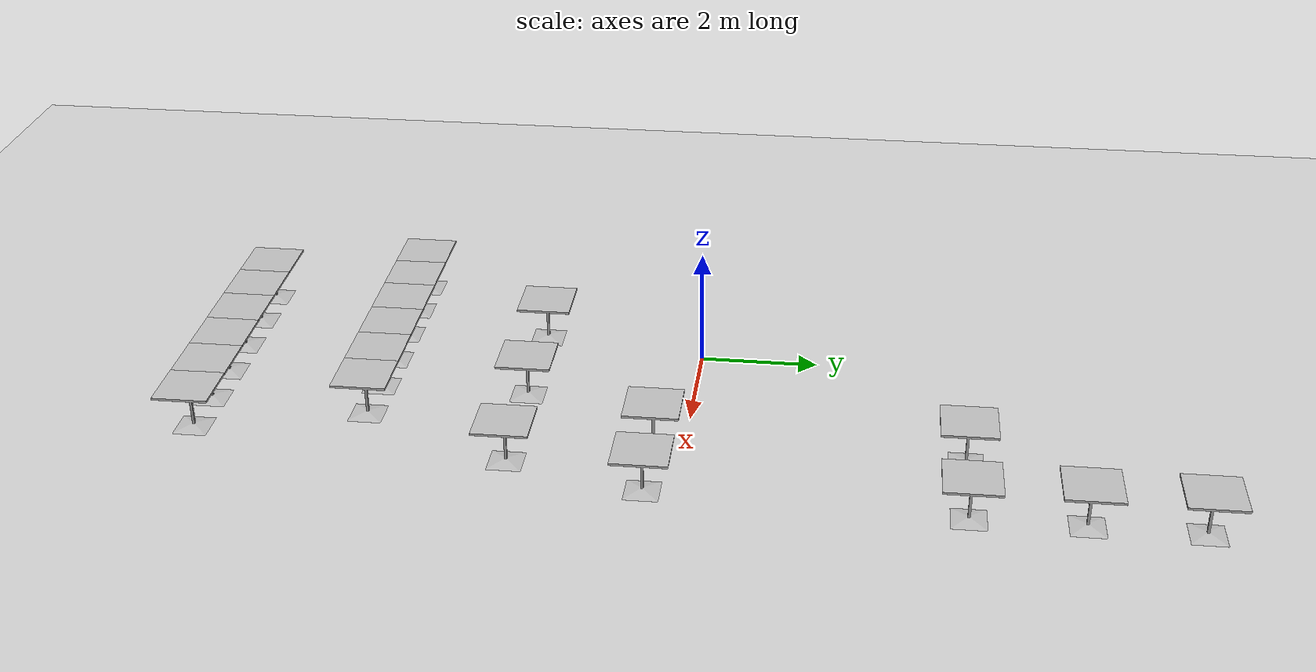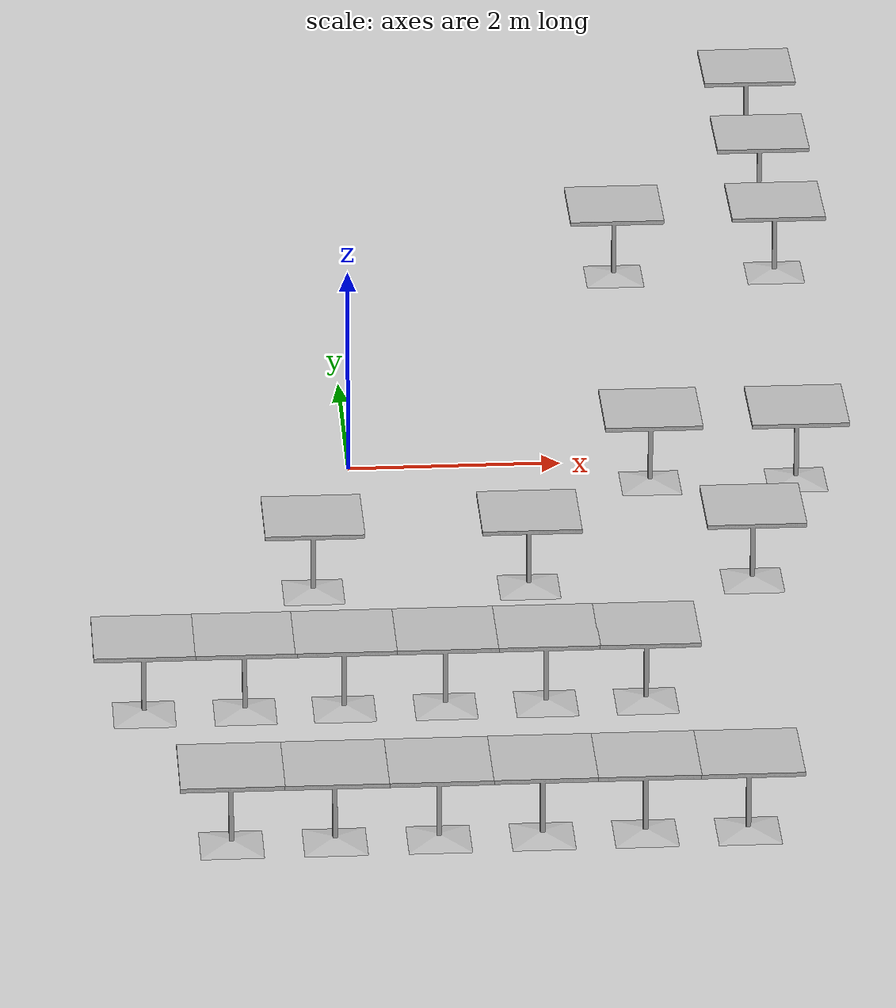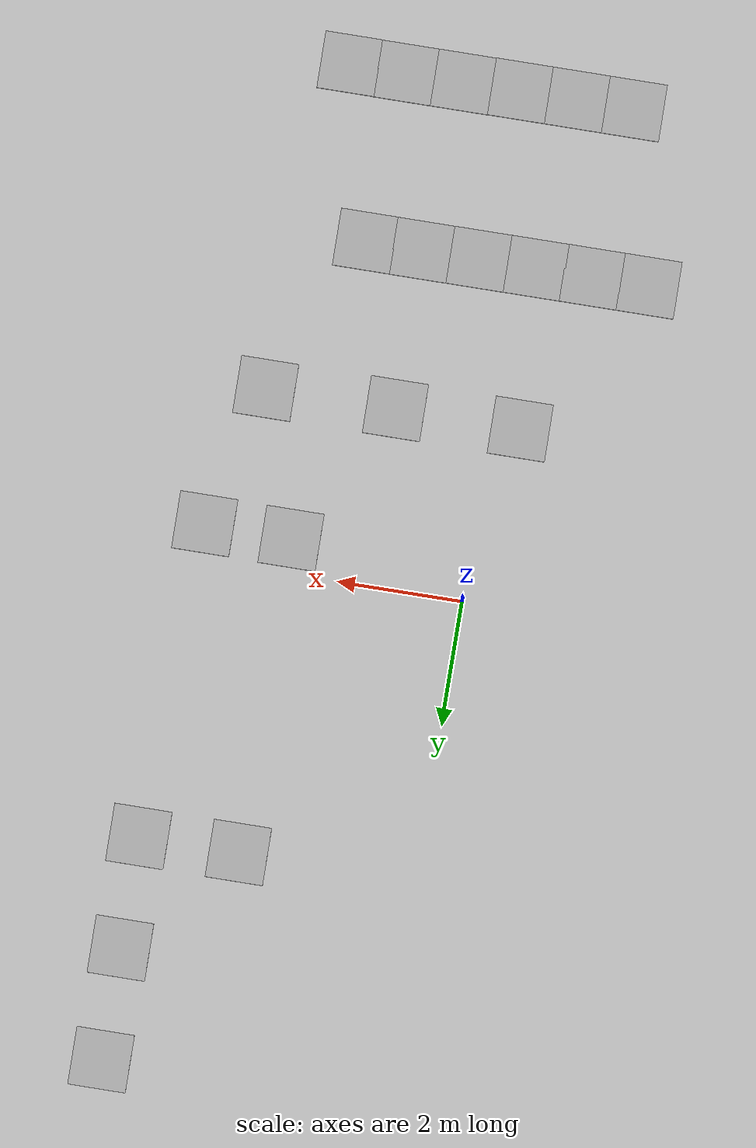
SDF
<sdf version="1.7">
 <world name="default">
  <light name="sun" type="directional">
   <pose>0 0 10 0 -0 0</pose>
   <diffuse>0.8 0.8 0.8 1</diffuse>
   <specular>0.2 0.2 0.2 1</specular>
   <attenuation>
    <range>1000</range>
    <constant>0.9</constant>
    <linear>0.01</linear>
    <quadratic>0.001</quadratic>
   </attenuation>
   <direction>-0.5 0.1 -0.9</direction>
   <spot><inner_angle>0</inner_angle><outer_angle>0</outer_angle><falloff>0</falloff></spot>
  </light>
  <model name="ground_plane">
   <static>1</static>
   <link name="link">
    <collision name="collision">
     <geometry><plane><normal>0 0 1</normal><size>100 100</size></plane></geometry>
     <surface>
      <contact><collide_bitmask>65535</collide_bitmask></contact>
      <friction><ode><mu>100</mu><mu2>50</mu2></ode></friction>
     </surface>
    </collision>
    <visual name="visual">
     <cast_shadows>0</cast_shadows>
     <geometry><plane><normal>0 0 1</normal><size>100 100</size></plane></geometry>
     <material>
      <script><uri>file://media/materials/scripts/gazebo.material</uri><name>Gazebo/Grey</name></script>
     </material>
    </visual>
   </link>
  </model>
  <gravity>0 0 -9.8</gravity>
  <magnetic_field>6e-06 2.3e-05 -4.2e-05</magnetic_field>
  <atmosphere type="adiabatic"/>
  <physics type="ode">
   <max_step_size>0.001</max_step_size>
   <real_time_factor>1</real_time_factor>
   <real_time_update_rate>1000</real_time_update_rate>
  </physics>
  <scene><ambient>0.4 0.4 0.4 1</ambient><background>0.7 0.7 0.7 1</background><shadows>1</shadows></scene>
  <spherical_coordinates>
   <surface_model>EARTH_WGS84</surface_model>
   <latitude_deg>0</latitude_deg>
   <longitude_deg>0</longitude_deg>
   <elevation>0</elevation>
   <heading_deg>0</heading_deg>
  </spherical_coordinates>
  <model name="cafe_table">
   <static>1</static>
   <link name="link">
    <collision name="surface">
     <pose>0 0 0.755 0 -0 0</pose>
     <geometry><box><size>0.913 0.913 0.04</size></box></geometry>
    </collision>
    <collision name="column">
     <pose>0 0 0.37 0 -0 0</pose>
     <geometry><box><size>0.042 0.042 0.74</size></box></geometry>
    </collision>
    <collision name="base">
     <pose>0 0 0.02 0 -0 0</pose>
     <geometry><box><size>0.56 0.56 0.04</size></box></geometry>
    </collision>
    <visual name="visual">
     <geometry><mesh><uri>model://cafe_table/meshes/cafe_table.dae</uri></mesh></geometry>
    </visual>
   </link>
   <pose>-1.45373 -8.08665 0 0 -0 0</pose>
  </model>
  <model name="cafe_table_0">
   <static>1</static>
   <link name="link">
    <collision name="surface">
     <pose>0 0 0.755 0 -0 0</pose>
     <geometry><box><size>0.913 0.913 0.04</size></box></geometry>
    </collision>
    <collision name="column">
     <pose>0 0 0.37 0 -0 0</pose>
     <geometry><box><size>0.042 0.042 0.74</size></box></geometry>
    </collision>
    <collision name="base">
     <pose>0 0 0.02 0 -0 0</pose>
     <geometry><box><size>0.56 0.56 0.04</size></box></geometry>
    </collision>
    <visual name="visual">
     <geometry><mesh><uri>model://cafe_table/meshes/cafe_table.dae</uri></mesh></geometry>
    </visual>
   </link>
   <pose>-0.542813 -8.08707 0 0 -0 0</pose>
  </model>
  <model name="cafe_table_1">
   <static>1</static>
   <link name="link">
    <collision name="surface">
     <pose>0 0 0.755 0 -0 0</pose>
     <geometry><box><size>0.913 0.913 0.04</size></box></geometry>
    </collision>
    <collision name="column">
     <pose>0 0 0.37 0 -0 0</pose>
     <geometry><box><size>0.042 0.042 0.74</size></box></geometry>
    </collision>
    <collision name="base">
     <pose>0 0 0.02 0 -0 0</pose>
     <geometry><box><size>0.56 0.56 0.04</size></box></geometry>
    </collision>
    <visual name="visual">
     <geometry><mesh><uri>model://cafe_table/meshes/cafe_table.dae</uri></mesh></geometry>
    </visual>
   </link>
   <pose>0.37169 -8.08691 0 0 -0 0</pose>
  </model>
  <model name="cafe_table_2">
   <static>1</static>
   <link name="link">
    <collision name="surface">
     <pose>0 0 0.755 0 -0 0</pose>
     <geometry><box><size>0.913 0.913 0.04</size></box></geometry>
    </collision>
    <collision name="column">
     <pose>0 0 0.37 0 -0 0</pose>
     <geometry><box><size>0.042 0.042 0.74</size></box></geometry>
    </collision>
    <collision name="base">
     <pose>0 0 0.02 0 -0 0</pose>
     <geometry><box><size>0.56 0.56 0.04</size></box></geometry>
    </collision>
    <visual name="visual">
     <geometry><mesh><uri>model://cafe_table/meshes/cafe_table.dae</uri></mesh></geometry>
    </visual>
   </link>
   <pose>1.28277 -8.08267 0 0 -0 0</pose>
  </model>
  <model name="cafe_table_3">
   <static>1</static>
   <link name="link">
    <collision name="surface">
     <pose>0 0 0.755 0 -0 0</pose>
     <geometry><box><size>0.913 0.913 0.04</size></box></geometry>
    </collision>
    <collision name="column">
     <pose>0 0 0.37 0 -0 0</pose>
     <geometry><box><size>0.042 0.042 0.74</size></box></geometry>
    </collision>
    <collision name="base">
     <pose>0 0 0.02 0 -0 0</pose>
     <geometry><box><size>0.56 0.56 0.04</size></box></geometry>
    </collision>
    <visual name="visual">
     <geometry><mesh><uri>model://cafe_table/meshes/cafe_table.dae</uri></mesh></geometry>
    </visual>
   </link>
   <pose>2.18945 -8.08136 0 0 -0 0</pose>
  </model>
  <model name="cafe_table_4">
   <static>1</static>
   <link name="link">
    <collision name="surface">
     <pose>0 0 0.755 0 -0 0</pose>
     <geometry><box><size>0.913 0.913 0.04</size></box></geometry>
    </collision>
    <collision name="column">
     <pose>0 0 0.37 0 -0 0</pose>
     <geometry><box><size>0.042 0.042 0.74</size></box></geometry>
    </collision>
    <collision name="base">
     <pose>0 0 0.02 0 -0 0</pose>
     <geometry><box><size>0.56 0.56 0.04</size></box></geometry>
    </collision>
    <visual name="visual">
     <geometry><mesh><uri>model://cafe_table/meshes/cafe_table.dae</uri></mesh></geometry>
    </visual>
   </link>
   <pose>3.09726 -8.08431 0 0 -0 0</pose>
  </model>
  <model name="cafe_table_5">
   <static>1</static>
   <link name="link">
    <collision name="surface">
     <pose>0 0 0.755 0 -0 0</pose>
     <geometry><box><size>0.913 0.913 0.04</size></box></geometry>
    </collision>
    <collision name="column">
     <pose>0 0 0.37 0 -0 0</pose>
     <geometry><box><size>0.042 0.042 0.74</size></box></geometry>
    </collision>
    <collision name="base">
     <pose>0 0 0.02 0 -0 0</pose>
     <geometry><box><size>0.56 0.56 0.04</size></box></geometry>
    </collision>
    <visual name="visual">
     <geometry><mesh><uri>model://cafe_table/meshes/cafe_table.dae</uri></mesh></geometry>
    </visual>
   </link>
   <pose>-2.12315 -5.34626 0 0 -0 0</pose>
  </model>
  <model name="cafe_table_6">
   <static>1</static>
   <link name="link">
    <collision name="surface">
     <pose>0 0 0.755 0 -0 0</pose>
     <geometry><box><size>0.913 0.913 0.04</size></box></geometry>
    </collision>
    <collision name="column">
     <pose>0 0 0.37 0 -0 0</pose>
     <geometry><box><size>0.042 0.042 0.74</size></box></geometry>
    </collision>
    <collision name="base">
     <pose>0 0 0.02 0 -0 0</pose>
     <geometry><box><size>0.56 0.56 0.04</size></box></geometry>
    </collision>
    <visual name="visual">
     <geometry><mesh><uri>model://cafe_table/meshes/cafe_table.dae</uri></mesh></geometry>
    </visual>
   </link>
   <pose>-1.21581 -5.34588 0 0 -0 0</pose>
  </model>
  <model name="cafe_table_7">
   <static>1</static>
   <link name="link">
    <collision name="surface">
     <pose>0 0 0.755 0 -0 0</pose>
     <geometry><box><size>0.913 0.913 0.04</size></box></geometry>
    </collision>
    <collision name="column">
     <pose>0 0 0.37 0 -0 0</pose>
     <geometry><box><size>0.042 0.042 0.74</size></box></geometry>
    </collision>
    <collision name="base">
     <pose>0 0 0.02 0 -0 0</pose>
     <geometry><box><size>0.56 0.56 0.04</size></box></geometry>
    </collision>
    <visual name="visual">
     <geometry><mesh><uri>model://cafe_table/meshes/cafe_table.dae</uri></mesh></geometry>
    </visual>
   </link>
   <pose>-0.321313 -5.34445 0 0 -0 0</pose>
  </model>
  <model name="cafe_table_8">
   <static>1</static>
   <link name="link">
    <collision name="surface">
     <pose>0 0 0.755 0 -0 0</pose>
     <geometry><box><size>0.913 0.913 0.04</size></box></geometry>
    </collision>
    <collision name="column">
     <pose>0 0 0.37 0 -0 0</pose>
     <geometry><box><size>0.042 0.042 0.74</size></box></geometry>
    </collision>
    <collision name="base">
     <pose>0 0 0.02 0 -0 0</pose>
     <geometry><box><size>0.56 0.56 0.04</size></box></geometry>
    </collision>
    <visual name="visual">
     <geometry><mesh><uri>model://cafe_table/meshes/cafe_table.dae</uri></mesh></geometry>
    </visual>
   </link>
   <pose>0.592464 -5.34282 0 0 -0 0</pose>
  </model>
  <model name="cafe_table_9">
   <static>1</static>
   <link name="link">
    <collision name="surface">
     <pose>0 0 0.755 0 -0 0</pose>
     <geometry><box><size>0.913 0.913 0.04</size></box></geometry>
    </collision>
    <collision name="column">
     <pose>0 0 0.37 0 -0 0</pose>
     <geometry><box><size>0.042 0.042 0.74</size></box></geometry>
    </collision>
    <collision name="base">
     <pose>0 0 0.02 0 -0 0</pose>
     <geometry><box><size>0.56 0.56 0.04</size></box></geometry>
    </collision>
    <visual name="visual">
     <geometry><mesh><uri>model://cafe_table/meshes/cafe_table.dae</uri></mesh></geometry>
    </visual>
   </link>
   <pose>1.50196 -5.3412 0 0 -0 0</pose>
  </model>
  <model name="cafe_table_10">
   <static>1</static>
   <link name="link">
    <collision name="surface">
     <pose>0 0 0.755 0 -0 0</pose>
     <geometry><box><size>0.913 0.913 0.04</size></box></geometry>
    </collision>
    <collision name="column">
     <pose>0 0 0.37 0 -0 0</pose>
     <geometry><box><size>0.042 0.042 0.74</size></box></geometry>
    </collision>
    <collision name="base">
     <pose>0 0 0.02 0 -0 0</pose>
     <geometry><box><size>0.56 0.56 0.04</size></box></geometry>
    </collision>
    <visual name="visual">
     <geometry><mesh><uri>model://cafe_table/meshes/cafe_table.dae</uri></mesh></geometry>
    </visual>
   </link>
   <pose>2.40675 -5.34234 0 0 -0 0</pose>
  </model>
  <model name="cafe_table_11">
   <static>1</static>
   <link name="link">
    <collision name="surface">
     <pose>0 0 0.755 0 -0 0</pose>
     <geometry><box><size>0.913 0.913 0.04</size></box></geometry>
    </collision>
    <collision name="column">
     <pose>0 0 0.37 0 -0 0</pose>
     <geometry><box><size>0.042 0.042 0.74</size></box></geometry>
    </collision>
    <collision name="base">
     <pose>0 0 0.02 0 -0 0</pose>
     <geometry><box><size>0.56 0.56 0.04</size></box></geometry>
    </collision>
    <visual name="visual">
     <geometry><mesh><uri>model://cafe_table/meshes/cafe_table.dae</uri></mesh></geometry>
    </visual>
   </link>
   <pose>-0.474162 -2.79119 0 0 -0 0</pose>
  </model>
  <model name="cafe_table_12">
   <static>1</static>
   <link name="link">
    <collision name="surface">
     <pose>0 0 0.755 0 -0 0</pose>
     <geometry><box><size>0.913 0.913 0.04</size></box></geometry>
    </collision>
    <collision name="column">
     <pose>0 0 0.37 0 -0 0</pose>
     <geometry><box><size>0.042 0.042 0.74</size></box></geometry>
    </collision>
    <collision name="base">
     <pose>0 0 0.02 0 -0 0</pose>
     <geometry><box><size>0.56 0.56 0.04</size></box></geometry>
    </collision>
    <visual name="visual">
     <geometry><mesh><uri>model://cafe_table/meshes/cafe_table.dae</uri></mesh></geometry>
    </visual>
   </link>
   <pose>1.51823 -2.79819 0 0 -0 0</pose>
  </model>
  <model name="cafe_table_13">
   <static>1</static>
   <link name="link">
    <collision name="surface">
     <pose>0 0 0.755 0 -0 0</pose>
     <geometry><box><size>0.913 0.913 0.04</size></box></geometry>
    </collision>
    <collision name="column">
     <pose>0 0 0.37 0 -0 0</pose>
     <geometry><box><size>0.042 0.042 0.74</size></box></geometry>
    </collision>
    <collision name="base">
     <pose>0 0 0.02 0 -0 0</pose>
     <geometry><box><size>0.56 0.56 0.04</size></box></geometry>
    </collision>
    <visual name="visual">
     <geometry><mesh><uri>model://cafe_table/meshes/cafe_table.dae</uri></mesh></geometry>
    </visual>
   </link>
   <pose>3.58693 -2.78723 0 0 -0 0</pose>
  </model>
  <model name="cafe_table_16">
   <static>1</static>
   <link name="link">
    <collision name="surface">
     <pose>0 0 0.755 0 -0 0</pose>
     <geometry><box><size>0.913 0.913 0.04</size></box></geometry>
    </collision>
    <collision name="column">
     <pose>0 0 0.37 0 -0 0</pose>
     <geometry><box><size>0.042 0.042 0.74</size></box></geometry>
    </collision>
    <collision name="base">
     <pose>0 0 0.02 0 -0 0</pose>
     <geometry><box><size>0.56 0.56 0.04</size></box></geometry>
    </collision>
    <visual name="visual">
     <geometry><mesh><uri>model://cafe_table/meshes/cafe_table.dae</uri></mesh></geometry>
    </visual>
   </link>
   <pose>2.81576 -0.513229 0 0 -0 0</pose>
  </model>
  <model name="cafe_table_17">
   <static>1</static>
   <link name="link">
    <collision name="surface">
     <pose>0 0 0.755 0 -0 0</pose>
     <geometry><box><size>0.913 0.913 0.04</size></box></geometry>
    </collision>
    <collision name="column">
     <pose>0 0 0.37 0 -0 0</pose>
     <geometry><box><size>0.042 0.042 0.74</size></box></geometry>
    </collision>
    <collision name="base">
     <pose>0 0 0.02 0 -0 0</pose>
     <geometry><box><size>0.56 0.56 0.04</size></box></geometry>
    </collision>
    <visual name="visual">
     <geometry><mesh><uri>model://cafe_table/meshes/cafe_table.dae</uri></mesh></geometry>
    </visual>
   </link>
   <pose>4.19328 -0.525004 0 0 -0 0</pose>
  </model>
  <model name="cafe_table_18">
   <static>1</static>
   <link name="link">
    <collision name="surface">
     <pose>0 0 0.755 0 -0 0</pose>
     <geometry><box><size>0.913 0.913 0.04</size></box></geometry>
    </collision>
    <collision name="column">
     <pose>0 0 0.37 0 -0 0</pose>
     <geometry><box><size>0.042 0.042 0.74</size></box></geometry>
    </collision>
    <collision name="base">
     <pose>0 0 0.02 0 -0 0</pose>
     <geometry><box><size>0.56 0.56 0.04</size></box></geometry>
    </collision>
    <visual name="visual">
     <geometry><mesh><uri>model://cafe_table/meshes/cafe_table.dae</uri></mesh></geometry>
    </visual>
   </link>
   <pose>4.42525 4.49811 0 0 -0 0</pose>
  </model>
  <model name="cafe_table_19">
   <static>1</static>
   <link name="link">
    <collision name="surface">
     <pose>0 0 0.755 0 -0 0</pose>
     <geometry><box><size>0.913 0.913 0.04</size></box></geometry>
    </collision>
    <collision name="column">
     <pose>0 0 0.37 0 -0 0</pose>
     <geometry><box><size>0.042 0.042 0.74</size></box></geometry>
    </collision>
    <collision name="base">
     <pose>0 0 0.02 0 -0 0</pose>
     <geometry><box><size>0.56 0.56 0.04</size></box></geometry>
    </collision>
    <visual name="visual">
     <geometry><mesh><uri>model://cafe_table/meshes/cafe_table.dae</uri></mesh></geometry>
    </visual>
   </link>
   <pose>4.42773 6.27247 0 0 -0 0</pose>
  </model>
  <model name="cafe_table_20">
   <static>1</static>
   <link name="link">
    <collision name="surface">
     <pose>0 0 0.755 0 -0 0</pose>
     <geometry><box><size>0.913 0.913 0.04</size></box></geometry>
    </collision>
    <collision name="column">
     <pose>0 0 0.37 0 -0 0</pose>
     <geometry><box><size>0.042 0.042 0.74</size></box></geometry>
    </collision>
    <collision name="base">
     <pose>0 0 0.02 0 -0 0</pose>
     <geometry><box><size>0.56 0.56 0.04</size></box></geometry>
    </collision>
    <visual name="visual">
     <geometry><mesh><uri>model://cafe_table/meshes/cafe_table.dae</uri></mesh></geometry>
    </visual>
   </link>
   <pose>4.44605 8.04639 0 0 -0 0</pose>
  </model>
  <model name="cafe_table_21">
   <static>1</static>
   <link name="link">
    <collision name="surface">
     <pose>0 0 0.755 0 -0 0</pose>
     <geometry><box><size>0.913 0.913 0.04</size></box></geometry>
    </collision>
    <collision name="column">
     <pose>0 0 0.37 0 -0 0</pose>
     <geometry><box><size>0.042 0.042 0.74</size></box></geometry>
    </collision>
    <collision name="base">
     <pose>0 0 0.02 0 -0 0</pose>
     <geometry><box><size>0.56 0.56 0.04</size></box></geometry>
    </collision>
    <visual name="visual">
     <geometry><mesh><uri>model://cafe_table/meshes/cafe_table.dae</uri></mesh></geometry>
    </visual>
   </link>
   <pose>2.8423 4.49936 0 0 -0 0</pose>
  </model>
 </world>
</sdf>
